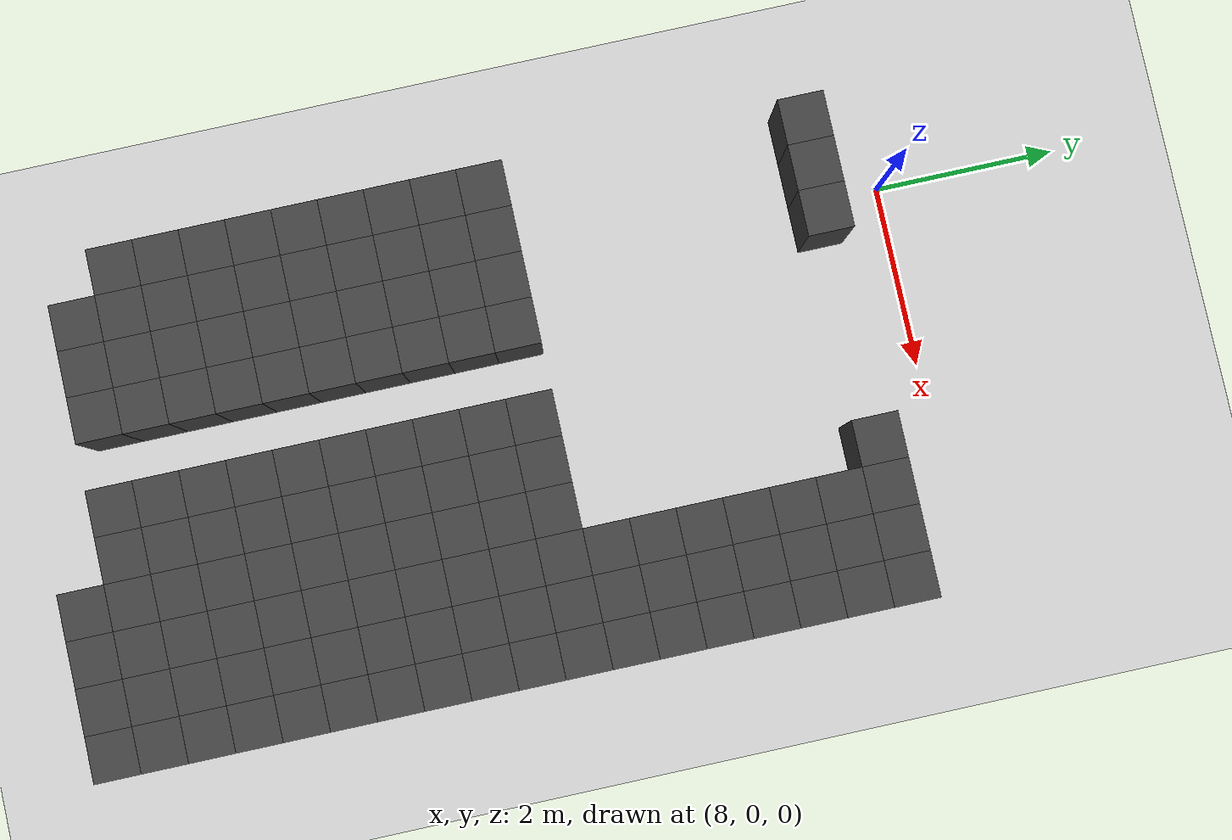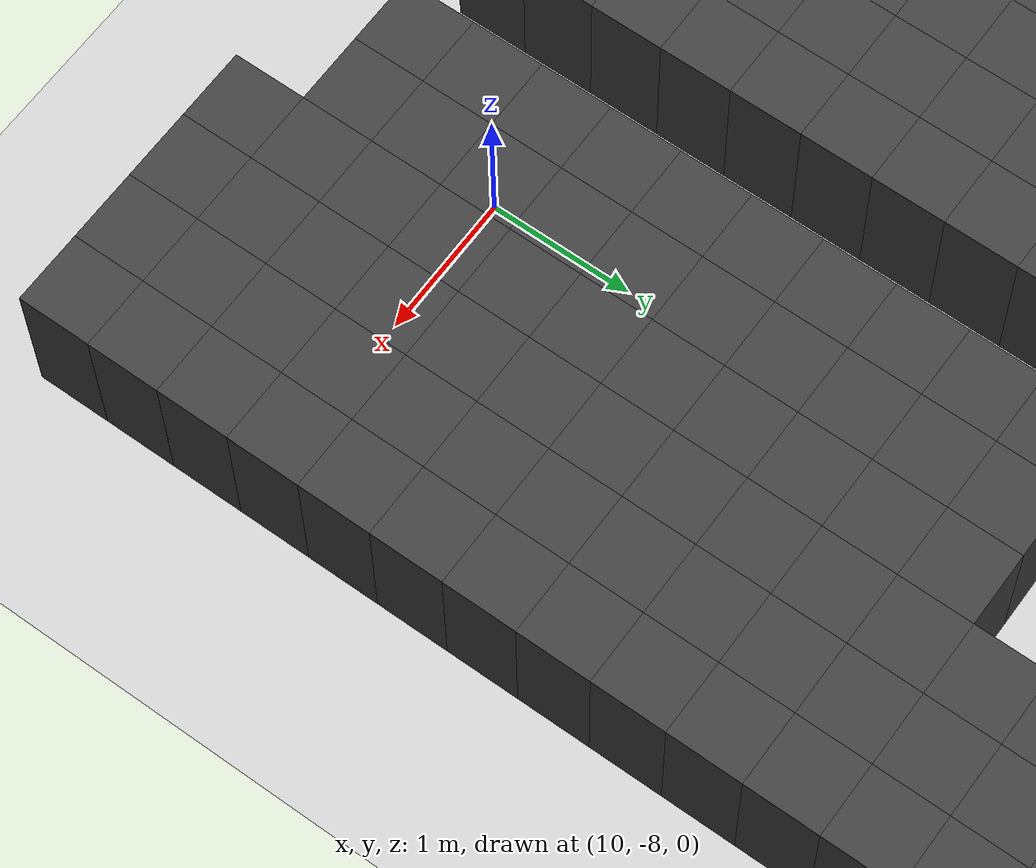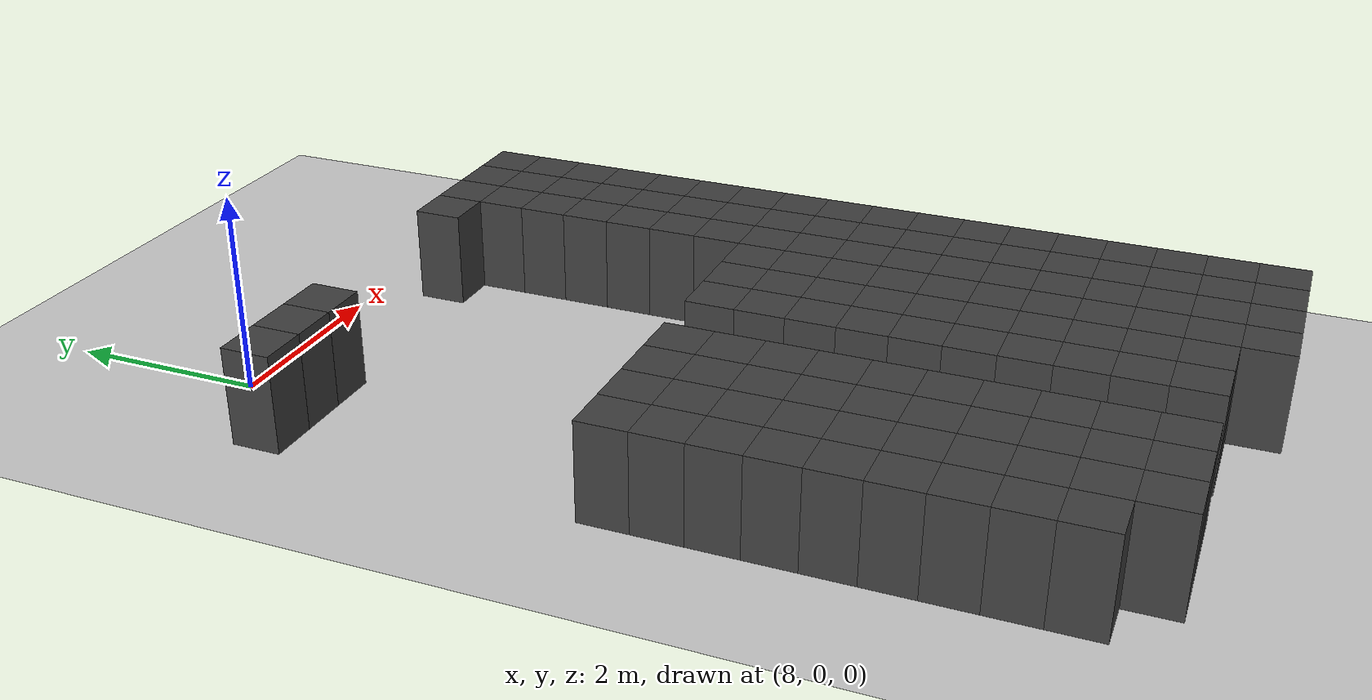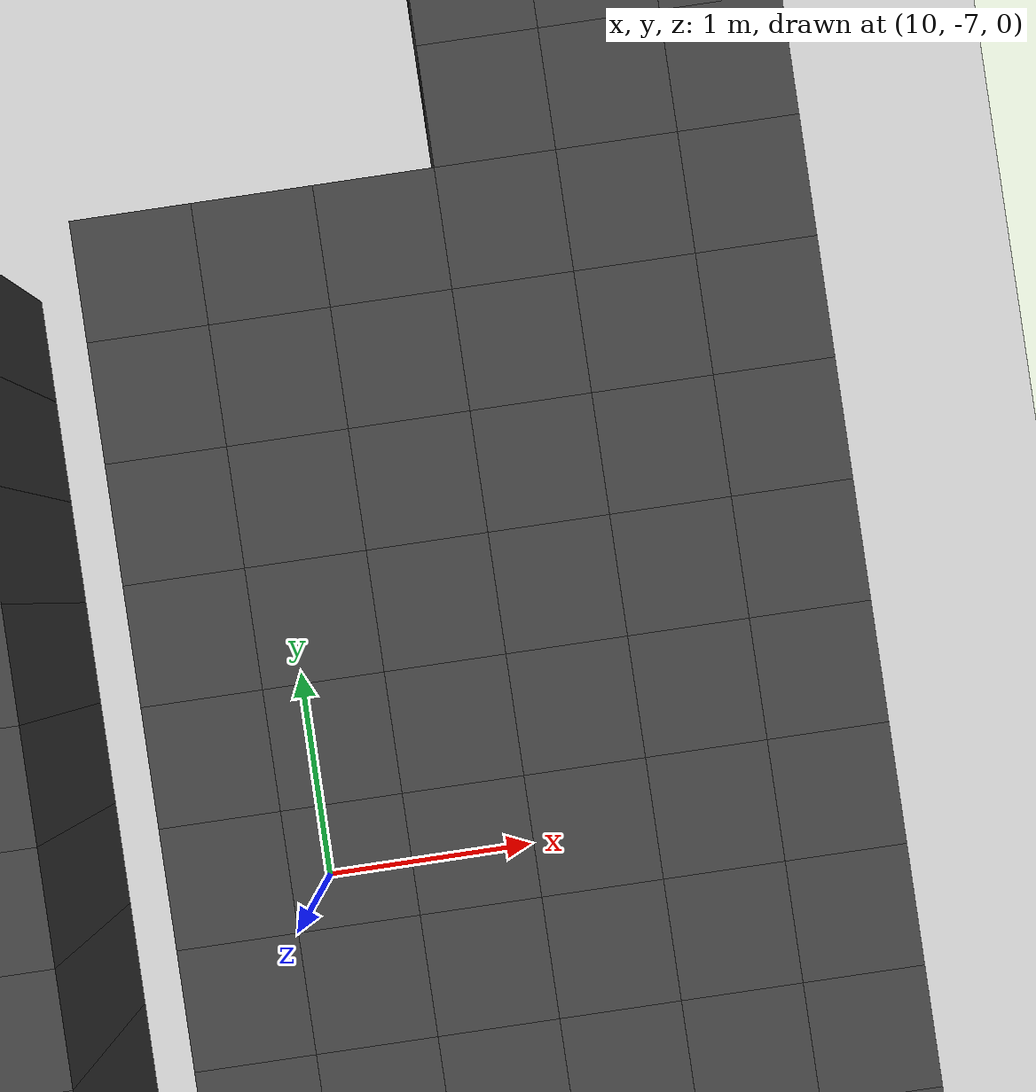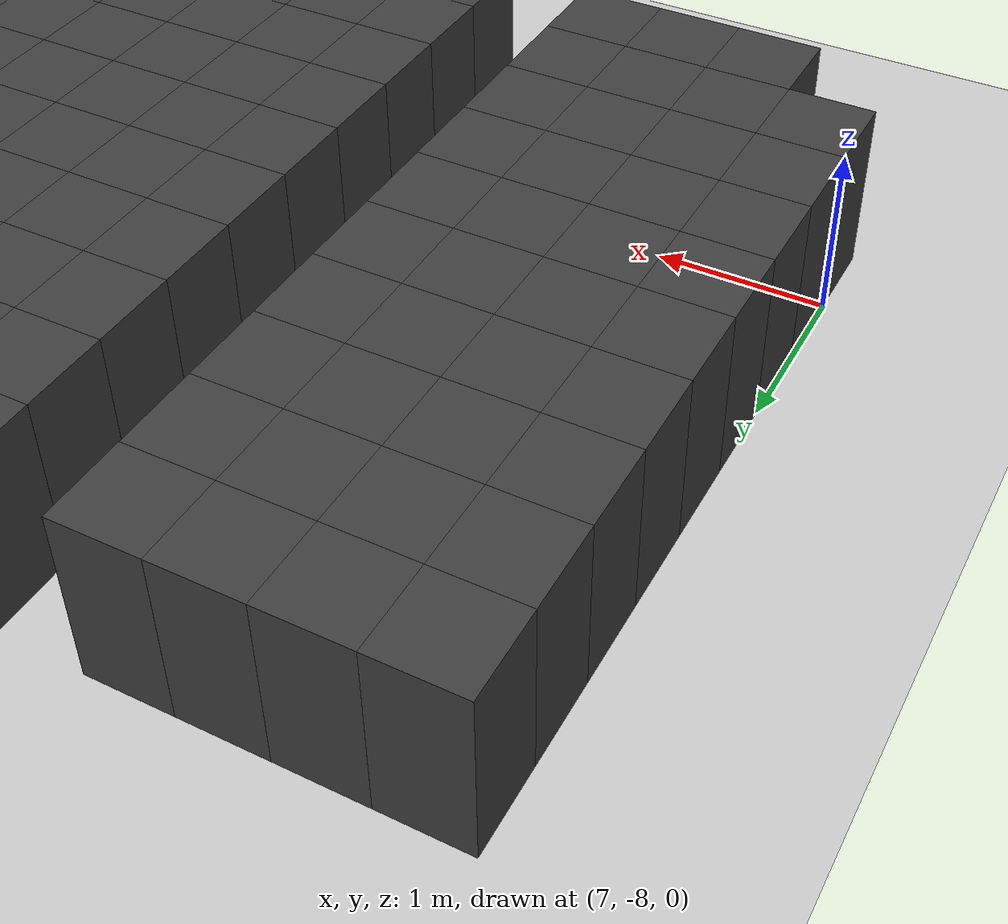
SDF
<sdf version="1.7">
 <world name="map_14494">
  <model name="ground_plane">
   <static>true</static>
   <link name="link">
    <collision name="collision">
     <geometry><plane><normal>0 0 1</normal><size>200 200</size></plane></geometry>
    </collision>
    <visual name="visual">
     <geometry><plane><normal>0 0 1</normal><size>200 200</size></plane></geometry>
     <material><ambient>0.8 0.8 0.8 1</ambient><diffuse>0.8 0.8 0.8 1</diffuse></material>
    </visual>
   </link>
  </model>
  <model name="maze_environment">
   <static>true</static>
   <link name="wall_978">
    <pose>7.250 -0.750 0.500 0 0 0</pose>
    <collision name="col"><geometry><box><size>0.5 0.5 1.0</size></box></geometry></collision>
    <visual name="vis">
     <geometry><box><size>0.5 0.5 1.0</size></box></geometry>
     <material><ambient>0.15 0.15 0.15 1</ambient><diffuse>0.25 0.25 0.25 1</diffuse></material>
    </visual>
   </link>
   <link name="wall_979">
    <pose>7.750 -0.750 0.500 0 0 0</pose>
    <collision name="col"><geometry><box><size>0.5 0.5 1.0</size></box></geometry></collision>
    <visual name="vis">
     <geometry><box><size>0.5 0.5 1.0</size></box></geometry>
     <material><ambient>0.15 0.15 0.15 1</ambient><diffuse>0.25 0.25 0.25 1</diffuse></material>
    </visual>
   </link>
   <link name="wall_980">
    <pose>8.250 -0.750 0.500 0 0 0</pose>
    <collision name="col"><geometry><box><size>0.5 0.5 1.0</size></box></geometry></collision>
    <visual name="vis">
     <geometry><box><size>0.5 0.5 1.0</size></box></geometry>
     <material><ambient>0.15 0.15 0.15 1</ambient><diffuse>0.25 0.25 0.25 1</diffuse></material>
    </visual>
   </link>
   <link name="wall_981">
    <pose>10.750 -0.750 0.500 0 0 0</pose>
    <collision name="col"><geometry><box><size>0.5 0.5 1.0</size></box></geometry></collision>
    <visual name="vis">
     <geometry><box><size>0.5 0.5 1.0</size></box></geometry>
     <material><ambient>0.15 0.15 0.15 1</ambient><diffuse>0.25 0.25 0.25 1</diffuse></material>
    </visual>
   </link>
   <link name="wall_982">
    <pose>11.250 -0.750 0.500 0 0 0</pose>
    <collision name="col"><geometry><box><size>0.5 0.5 1.0</size></box></geometry></collision>
    <visual name="vis">
     <geometry><box><size>0.5 0.5 1.0</size></box></geometry>
     <material><ambient>0.15 0.15 0.15 1</ambient><diffuse>0.25 0.25 0.25 1</diffuse></material>
    </visual>
   </link>
   <link name="wall_983">
    <pose>11.750 -0.750 0.500 0 0 0</pose>
    <collision name="col"><geometry><box><size>0.5 0.5 1.0</size></box></geometry></collision>
    <visual name="vis">
     <geometry><box><size>0.5 0.5 1.0</size></box></geometry>
     <material><ambient>0.15 0.15 0.15 1</ambient><diffuse>0.25 0.25 0.25 1</diffuse></material>
    </visual>
   </link>
   <link name="wall_984">
    <pose>12.250 -0.750 0.500 0 0 0</pose>
    <collision name="col"><geometry><box><size>0.5 0.5 1.0</size></box></geometry></collision>
    <visual name="vis">
     <geometry><box><size>0.5 0.5 1.0</size></box></geometry>
     <material><ambient>0.15 0.15 0.15 1</ambient><diffuse>0.25 0.25 0.25 1</diffuse></material>
    </visual>
   </link>
   <link name="wall_1014">
    <pose>11.250 -1.250 0.500 0 0 0</pose>
    <collision name="col"><geometry><box><size>0.5 0.5 1.0</size></box></geometry></collision>
    <visual name="vis">
     <geometry><box><size>0.5 0.5 1.0</size></box></geometry>
     <material><ambient>0.15 0.15 0.15 1</ambient><diffuse>0.25 0.25 0.25 1</diffuse></material>
    </visual>
   </link>
   <link name="wall_1015">
    <pose>11.750 -1.250 0.500 0 0 0</pose>
    <collision name="col"><geometry><box><size>0.5 0.5 1.0</size></box></geometry></collision>
    <visual name="vis">
     <geometry><box><size>0.5 0.5 1.0</size></box></geometry>
     <material><ambient>0.15 0.15 0.15 1</ambient><diffuse>0.25 0.25 0.25 1</diffuse></material>
    </visual>
   </link>
   <link name="wall_1016">
    <pose>12.250 -1.250 0.500 0 0 0</pose>
    <collision name="col"><geometry><box><size>0.5 0.5 1.0</size></box></geometry></collision>
    <visual name="vis">
     <geometry><box><size>0.5 0.5 1.0</size></box></geometry>
     <material><ambient>0.15 0.15 0.15 1</ambient><diffuse>0.25 0.25 0.25 1</diffuse></material>
    </visual>
   </link>
   <link name="wall_1046">
    <pose>11.250 -1.750 0.500 0 0 0</pose>
    <collision name="col"><geometry><box><size>0.5 0.5 1.0</size></box></geometry></collision>
    <visual name="vis">
     <geometry><box><size>0.5 0.5 1.0</size></box></geometry>
     <material><ambient>0.15 0.15 0.15 1</ambient><diffuse>0.25 0.25 0.25 1</diffuse></material>
    </visual>
   </link>
   <link name="wall_1047">
    <pose>11.750 -1.750 0.500 0 0 0</pose>
    <collision name="col"><geometry><box><size>0.5 0.5 1.0</size></box></geometry></collision>
    <visual name="vis">
     <geometry><box><size>0.5 0.5 1.0</size></box></geometry>
     <material><ambient>0.15 0.15 0.15 1</ambient><diffuse>0.25 0.25 0.25 1</diffuse></material>
    </visual>
   </link>
   <link name="wall_1048">
    <pose>12.250 -1.750 0.500 0 0 0</pose>
    <collision name="col"><geometry><box><size>0.5 0.5 1.0</size></box></geometry></collision>
    <visual name="vis">
     <geometry><box><size>0.5 0.5 1.0</size></box></geometry>
     <material><ambient>0.15 0.15 0.15 1</ambient><diffuse>0.25 0.25 0.25 1</diffuse></material>
    </visual>
   </link>
   <link name="wall_1078">
    <pose>11.250 -2.250 0.500 0 0 0</pose>
    <collision name="col"><geometry><box><size>0.5 0.5 1.0</size></box></geometry></collision>
    <visual name="vis">
     <geometry><box><size>0.5 0.5 1.0</size></box></geometry>
     <material><ambient>0.15 0.15 0.15 1</ambient><diffuse>0.25 0.25 0.25 1</diffuse></material>
    </visual>
   </link>
   <link name="wall_1079">
    <pose>11.750 -2.250 0.500 0 0 0</pose>
    <collision name="col"><geometry><box><size>0.5 0.5 1.0</size></box></geometry></collision>
    <visual name="vis">
     <geometry><box><size>0.5 0.5 1.0</size></box></geometry>
     <material><ambient>0.15 0.15 0.15 1</ambient><diffuse>0.25 0.25 0.25 1</diffuse></material>
    </visual>
   </link>
   <link name="wall_1080">
    <pose>12.250 -2.250 0.500 0 0 0</pose>
    <collision name="col"><geometry><box><size>0.5 0.5 1.0</size></box></geometry></collision>
    <visual name="vis">
     <geometry><box><size>0.5 0.5 1.0</size></box></geometry>
     <material><ambient>0.15 0.15 0.15 1</ambient><diffuse>0.25 0.25 0.25 1</diffuse></material>
    </visual>
   </link>
   <link name="wall_1104">
    <pose>11.250 -2.750 0.500 0 0 0</pose>
    <collision name="col"><geometry><box><size>0.5 0.5 1.0</size></box></geometry></collision>
    <visual name="vis">
     <geometry><box><size>0.5 0.5 1.0</size></box></geometry>
     <material><ambient>0.15 0.15 0.15 1</ambient><diffuse>0.25 0.25 0.25 1</diffuse></material>
    </visual>
   </link>
   <link name="wall_1105">
    <pose>11.750 -2.750 0.500 0 0 0</pose>
    <collision name="col"><geometry><box><size>0.5 0.5 1.0</size></box></geometry></collision>
    <visual name="vis">
     <geometry><box><size>0.5 0.5 1.0</size></box></geometry>
     <material><ambient>0.15 0.15 0.15 1</ambient><diffuse>0.25 0.25 0.25 1</diffuse></material>
    </visual>
   </link>
   <link name="wall_1106">
    <pose>12.250 -2.750 0.500 0 0 0</pose>
    <collision name="col"><geometry><box><size>0.5 0.5 1.0</size></box></geometry></collision>
    <visual name="vis">
     <geometry><box><size>0.5 0.5 1.0</size></box></geometry>
     <material><ambient>0.15 0.15 0.15 1</ambient><diffuse>0.25 0.25 0.25 1</diffuse></material>
    </visual>
   </link>
   <link name="wall_1131">
    <pose>11.250 -3.250 0.500 0 0 0</pose>
    <collision name="col"><geometry><box><size>0.5 0.5 1.0</size></box></geometry></collision>
    <visual name="vis">
     <geometry><box><size>0.5 0.5 1.0</size></box></geometry>
     <material><ambient>0.15 0.15 0.15 1</ambient><diffuse>0.25 0.25 0.25 1</diffuse></material>
    </visual>
   </link>
   <link name="wall_1132">
    <pose>11.750 -3.250 0.500 0 0 0</pose>
    <collision name="col"><geometry><box><size>0.5 0.5 1.0</size></box></geometry></collision>
    <visual name="vis">
     <geometry><box><size>0.5 0.5 1.0</size></box></geometry>
     <material><ambient>0.15 0.15 0.15 1</ambient><diffuse>0.25 0.25 0.25 1</diffuse></material>
    </visual>
   </link>
   <link name="wall_1133">
    <pose>12.250 -3.250 0.500 0 0 0</pose>
    <collision name="col"><geometry><box><size>0.5 0.5 1.0</size></box></geometry></collision>
    <visual name="vis">
     <geometry><box><size>0.5 0.5 1.0</size></box></geometry>
     <material><ambient>0.15 0.15 0.15 1</ambient><diffuse>0.25 0.25 0.25 1</diffuse></material>
    </visual>
   </link>
   <link name="wall_1158">
    <pose>11.250 -3.750 0.500 0 0 0</pose>
    <collision name="col"><geometry><box><size>0.5 0.5 1.0</size></box></geometry></collision>
    <visual name="vis">
     <geometry><box><size>0.5 0.5 1.0</size></box></geometry>
     <material><ambient>0.15 0.15 0.15 1</ambient><diffuse>0.25 0.25 0.25 1</diffuse></material>
    </visual>
   </link>
   <link name="wall_1159">
    <pose>11.750 -3.750 0.500 0 0 0</pose>
    <collision name="col"><geometry><box><size>0.5 0.5 1.0</size></box></geometry></collision>
    <visual name="vis">
     <geometry><box><size>0.5 0.5 1.0</size></box></geometry>
     <material><ambient>0.15 0.15 0.15 1</ambient><diffuse>0.25 0.25 0.25 1</diffuse></material>
    </visual>
   </link>
   <link name="wall_1160">
    <pose>12.250 -3.750 0.500 0 0 0</pose>
    <collision name="col"><geometry><box><size>0.5 0.5 1.0</size></box></geometry></collision>
    <visual name="vis">
     <geometry><box><size>0.5 0.5 1.0</size></box></geometry>
     <material><ambient>0.15 0.15 0.15 1</ambient><diffuse>0.25 0.25 0.25 1</diffuse></material>
    </visual>
   </link>
   <link name="wall_1178">
    <pose>7.250 -4.250 0.500 0 0 0</pose>
    <collision name="col"><geometry><box><size>0.5 0.5 1.0</size></box></geometry></collision>
    <visual name="vis">
     <geometry><box><size>0.5 0.5 1.0</size></box></geometry>
     <material><ambient>0.15 0.15 0.15 1</ambient><diffuse>0.25 0.25 0.25 1</diffuse></material>
    </visual>
   </link>
   <link name="wall_1179">
    <pose>7.750 -4.250 0.500 0 0 0</pose>
    <collision name="col"><geometry><box><size>0.5 0.5 1.0</size></box></geometry></collision>
    <visual name="vis">
     <geometry><box><size>0.5 0.5 1.0</size></box></geometry>
     <material><ambient>0.15 0.15 0.15 1</ambient><diffuse>0.25 0.25 0.25 1</diffuse></material>
    </visual>
   </link>
   <link name="wall_1180">
    <pose>8.250 -4.250 0.500 0 0 0</pose>
    <collision name="col"><geometry><box><size>0.5 0.5 1.0</size></box></geometry></collision>
    <visual name="vis">
     <geometry><box><size>0.5 0.5 1.0</size></box></geometry>
     <material><ambient>0.15 0.15 0.15 1</ambient><diffuse>0.25 0.25 0.25 1</diffuse></material>
    </visual>
   </link>
   <link name="wall_1181">
    <pose>8.750 -4.250 0.500 0 0 0</pose>
    <collision name="col"><geometry><box><size>0.5 0.5 1.0</size></box></geometry></collision>
    <visual name="vis">
     <geometry><box><size>0.5 0.5 1.0</size></box></geometry>
     <material><ambient>0.15 0.15 0.15 1</ambient><diffuse>0.25 0.25 0.25 1</diffuse></material>
    </visual>
   </link>
   <link name="wall_1182">
    <pose>9.750 -4.250 0.500 0 0 0</pose>
    <collision name="col"><geometry><box><size>0.5 0.5 1.0</size></box></geometry></collision>
    <visual name="vis">
     <geometry><box><size>0.5 0.5 1.0</size></box></geometry>
     <material><ambient>0.15 0.15 0.15 1</ambient><diffuse>0.25 0.25 0.25 1</diffuse></material>
    </visual>
   </link>
   <link name="wall_1183">
    <pose>10.250 -4.250 0.500 0 0 0</pose>
    <collision name="col"><geometry><box><size>0.5 0.5 1.0</size></box></geometry></collision>
    <visual name="vis">
     <geometry><box><size>0.5 0.5 1.0</size></box></geometry>
     <material><ambient>0.15 0.15 0.15 1</ambient><diffuse>0.25 0.25 0.25 1</diffuse></material>
    </visual>
   </link>
   <link name="wall_1184">
    <pose>10.750 -4.250 0.500 0 0 0</pose>
    <collision name="col"><geometry><box><size>0.5 0.5 1.0</size></box></geometry></collision>
    <visual name="vis">
     <geometry><box><size>0.5 0.5 1.0</size></box></geometry>
     <material><ambient>0.15 0.15 0.15 1</ambient><diffuse>0.25 0.25 0.25 1</diffuse></material>
    </visual>
   </link>
   <link name="wall_1185">
    <pose>11.250 -4.250 0.500 0 0 0</pose>
    <collision name="col"><geometry><box><size>0.5 0.5 1.0</size></box></geometry></collision>
    <visual name="vis">
     <geometry><box><size>0.5 0.5 1.0</size></box></geometry>
     <material><ambient>0.15 0.15 0.15 1</ambient><diffuse>0.25 0.25 0.25 1</diffuse></material>
    </visual>
   </link>
   <link name="wall_1186">
    <pose>11.750 -4.250 0.500 0 0 0</pose>
    <collision name="col"><geometry><box><size>0.5 0.5 1.0</size></box></geometry></collision>
    <visual name="vis">
     <geometry><box><size>0.5 0.5 1.0</size></box></geometry>
     <material><ambient>0.15 0.15 0.15 1</ambient><diffuse>0.25 0.25 0.25 1</diffuse></material>
    </visual>
   </link>
   <link name="wall_1187">
    <pose>12.250 -4.250 0.500 0 0 0</pose>
    <collision name="col"><geometry><box><size>0.5 0.5 1.0</size></box></geometry></collision>
    <visual name="vis">
     <geometry><box><size>0.5 0.5 1.0</size></box></geometry>
     <material><ambient>0.15 0.15 0.15 1</ambient><diffuse>0.25 0.25 0.25 1</diffuse></material>
    </visual>
   </link>
   <link name="wall_1215">
    <pose>7.250 -4.750 0.500 0 0 0</pose>
    <collision name="col"><geometry><box><size>0.5 0.5 1.0</size></box></geometry></collision>
    <visual name="vis">
     <geometry><box><size>0.5 0.5 1.0</size></box></geometry>
     <material><ambient>0.15 0.15 0.15 1</ambient><diffuse>0.25 0.25 0.25 1</diffuse></material>
    </visual>
   </link>
   <link name="wall_1216">
    <pose>7.750 -4.750 0.500 0 0 0</pose>
    <collision name="col"><geometry><box><size>0.5 0.5 1.0</size></box></geometry></collision>
    <visual name="vis">
     <geometry><box><size>0.5 0.5 1.0</size></box></geometry>
     <material><ambient>0.15 0.15 0.15 1</ambient><diffuse>0.25 0.25 0.25 1</diffuse></material>
    </visual>
   </link>
   <link name="wall_1217">
    <pose>8.250 -4.750 0.500 0 0 0</pose>
    <collision name="col"><geometry><box><size>0.5 0.5 1.0</size></box></geometry></collision>
    <visual name="vis">
     <geometry><box><size>0.5 0.5 1.0</size></box></geometry>
     <material><ambient>0.15 0.15 0.15 1</ambient><diffuse>0.25 0.25 0.25 1</diffuse></material>
    </visual>
   </link>
   <link name="wall_1218">
    <pose>8.750 -4.750 0.500 0 0 0</pose>
    <collision name="col"><geometry><box><size>0.5 0.5 1.0</size></box></geometry></collision>
    <visual name="vis">
     <geometry><box><size>0.5 0.5 1.0</size></box></geometry>
     <material><ambient>0.15 0.15 0.15 1</ambient><diffuse>0.25 0.25 0.25 1</diffuse></material>
    </visual>
   </link>
   <link name="wall_1219">
    <pose>9.750 -4.750 0.500 0 0 0</pose>
    <collision name="col"><geometry><box><size>0.5 0.5 1.0</size></box></geometry></collision>
    <visual name="vis">
     <geometry><box><size>0.5 0.5 1.0</size></box></geometry>
     <material><ambient>0.15 0.15 0.15 1</ambient><diffuse>0.25 0.25 0.25 1</diffuse></material>
    </visual>
   </link>
   <link name="wall_1220">
    <pose>10.250 -4.750 0.500 0 0 0</pose>
    <collision name="col"><geometry><box><size>0.5 0.5 1.0</size></box></geometry></collision>
    <visual name="vis">
     <geometry><box><size>0.5 0.5 1.0</size></box></geometry>
     <material><ambient>0.15 0.15 0.15 1</ambient><diffuse>0.25 0.25 0.25 1</diffuse></material>
    </visual>
   </link>
   <link name="wall_1221">
    <pose>10.750 -4.750 0.500 0 0 0</pose>
    <collision name="col"><geometry><box><size>0.5 0.5 1.0</size></box></geometry></collision>
    <visual name="vis">
     <geometry><box><size>0.5 0.5 1.0</size></box></geometry>
     <material><ambient>0.15 0.15 0.15 1</ambient><diffuse>0.25 0.25 0.25 1</diffuse></material>
    </visual>
   </link>
   <link name="wall_1222">
    <pose>11.250 -4.750 0.500 0 0 0</pose>
    <collision name="col"><geometry><box><size>0.5 0.5 1.0</size></box></geometry></collision>
    <visual name="vis">
     <geometry><box><size>0.5 0.5 1.0</size></box></geometry>
     <material><ambient>0.15 0.15 0.15 1</ambient><diffuse>0.25 0.25 0.25 1</diffuse></material>
    </visual>
   </link>
   <link name="wall_1223">
    <pose>11.750 -4.750 0.500 0 0 0</pose>
    <collision name="col"><geometry><box><size>0.5 0.5 1.0</size></box></geometry></collision>
    <visual name="vis">
     <geometry><box><size>0.5 0.5 1.0</size></box></geometry>
     <material><ambient>0.15 0.15 0.15 1</ambient><diffuse>0.25 0.25 0.25 1</diffuse></material>
    </visual>
   </link>
   <link name="wall_1224">
    <pose>12.250 -4.750 0.500 0 0 0</pose>
    <collision name="col"><geometry><box><size>0.5 0.5 1.0</size></box></geometry></collision>
    <visual name="vis">
     <geometry><box><size>0.5 0.5 1.0</size></box></geometry>
     <material><ambient>0.15 0.15 0.15 1</ambient><diffuse>0.25 0.25 0.25 1</diffuse></material>
    </visual>
   </link>
   <link name="wall_1252">
    <pose>7.250 -5.250 0.500 0 0 0</pose>
    <collision name="col"><geometry><box><size>0.5 0.5 1.0</size></box></geometry></collision>
    <visual name="vis">
     <geometry><box><size>0.5 0.5 1.0</size></box></geometry>
     <material><ambient>0.15 0.15 0.15 1</ambient><diffuse>0.25 0.25 0.25 1</diffuse></material>
    </visual>
   </link>
   <link name="wall_1253">
    <pose>7.750 -5.250 0.500 0 0 0</pose>
    <collision name="col"><geometry><box><size>0.5 0.5 1.0</size></box></geometry></collision>
    <visual name="vis">
     <geometry><box><size>0.5 0.5 1.0</size></box></geometry>
     <material><ambient>0.15 0.15 0.15 1</ambient><diffuse>0.25 0.25 0.25 1</diffuse></material>
    </visual>
   </link>
   <link name="wall_1254">
    <pose>8.250 -5.250 0.500 0 0 0</pose>
    <collision name="col"><geometry><box><size>0.5 0.5 1.0</size></box></geometry></collision>
    <visual name="vis">
     <geometry><box><size>0.5 0.5 1.0</size></box></geometry>
     <material><ambient>0.15 0.15 0.15 1</ambient><diffuse>0.25 0.25 0.25 1</diffuse></material>
    </visual>
   </link>
   <link name="wall_1255">
    <pose>8.750 -5.250 0.500 0 0 0</pose>
    <collision name="col"><geometry><box><size>0.5 0.5 1.0</size></box></geometry></collision>
    <visual name="vis">
     <geometry><box><size>0.5 0.5 1.0</size></box></geometry>
     <material><ambient>0.15 0.15 0.15 1</ambient><diffuse>0.25 0.25 0.25 1</diffuse></material>
    </visual>
   </link>
   <link name="wall_1256">
    <pose>9.750 -5.250 0.500 0 0 0</pose>
    <collision name="col"><geometry><box><size>0.5 0.5 1.0</size></box></geometry></collision>
    <visual name="vis">
     <geometry><box><size>0.5 0.5 1.0</size></box></geometry>
     <material><ambient>0.15 0.15 0.15 1</ambient><diffuse>0.25 0.25 0.25 1</diffuse></material>
    </visual>
   </link>
   <link name="wall_1257">
    <pose>10.250 -5.250 0.500 0 0 0</pose>
    <collision name="col"><geometry><box><size>0.5 0.5 1.0</size></box></geometry></collision>
    <visual name="vis">
     <geometry><box><size>0.5 0.5 1.0</size></box></geometry>
     <material><ambient>0.15 0.15 0.15 1</ambient><diffuse>0.25 0.25 0.25 1</diffuse></material>
    </visual>
   </link>
   <link name="wall_1258">
    <pose>10.750 -5.250 0.500 0 0 0</pose>
    <collision name="col"><geometry><box><size>0.5 0.5 1.0</size></box></geometry></collision>
    <visual name="vis">
     <geometry><box><size>0.5 0.5 1.0</size></box></geometry>
     <material><ambient>0.15 0.15 0.15 1</ambient><diffuse>0.25 0.25 0.25 1</diffuse></material>
    </visual>
   </link>
   <link name="wall_1259">
    <pose>11.250 -5.250 0.500 0 0 0</pose>
    <collision name="col"><geometry><box><size>0.5 0.5 1.0</size></box></geometry></collision>
    <visual name="vis">
     <geometry><box><size>0.5 0.5 1.0</size></box></geometry>
     <material><ambient>0.15 0.15 0.15 1</ambient><diffuse>0.25 0.25 0.25 1</diffuse></material>
    </visual>
   </link>
   <link name="wall_1260">
    <pose>11.750 -5.250 0.500 0 0 0</pose>
    <collision name="col"><geometry><box><size>0.5 0.5 1.0</size></box></geometry></collision>
    <visual name="vis">
     <geometry><box><size>0.5 0.5 1.0</size></box></geometry>
     <material><ambient>0.15 0.15 0.15 1</ambient><diffuse>0.25 0.25 0.25 1</diffuse></material>
    </visual>
   </link>
   <link name="wall_1261">
    <pose>12.250 -5.250 0.500 0 0 0</pose>
    <collision name="col"><geometry><box><size>0.5 0.5 1.0</size></box></geometry></collision>
    <visual name="vis">
     <geometry><box><size>0.5 0.5 1.0</size></box></geometry>
     <material><ambient>0.15 0.15 0.15 1</ambient><diffuse>0.25 0.25 0.25 1</diffuse></material>
    </visual>
   </link>
   <link name="wall_1299">
    <pose>7.250 -5.750 0.500 0 0 0</pose>
    <collision name="col"><geometry><box><size>0.5 0.5 1.0</size></box></geometry></collision>
    <visual name="vis">
     <geometry><box><size>0.5 0.5 1.0</size></box></geometry>
     <material><ambient>0.15 0.15 0.15 1</ambient><diffuse>0.25 0.25 0.25 1</diffuse></material>
    </visual>
   </link>
   <link name="wall_1300">
    <pose>7.750 -5.750 0.500 0 0 0</pose>
    <collision name="col"><geometry><box><size>0.5 0.5 1.0</size></box></geometry></collision>
    <visual name="vis">
     <geometry><box><size>0.5 0.5 1.0</size></box></geometry>
     <material><ambient>0.15 0.15 0.15 1</ambient><diffuse>0.25 0.25 0.25 1</diffuse></material>
    </visual>
   </link>
   <link name="wall_1301">
    <pose>8.250 -5.750 0.500 0 0 0</pose>
    <collision name="col"><geometry><box><size>0.5 0.5 1.0</size></box></geometry></collision>
    <visual name="vis">
     <geometry><box><size>0.5 0.5 1.0</size></box></geometry>
     <material><ambient>0.15 0.15 0.15 1</ambient><diffuse>0.25 0.25 0.25 1</diffuse></material>
    </visual>
   </link>
   <link name="wall_1302">
    <pose>8.750 -5.750 0.500 0 0 0</pose>
    <collision name="col"><geometry><box><size>0.5 0.5 1.0</size></box></geometry></collision>
    <visual name="vis">
     <geometry><box><size>0.5 0.5 1.0</size></box></geometry>
     <material><ambient>0.15 0.15 0.15 1</ambient><diffuse>0.25 0.25 0.25 1</diffuse></material>
    </visual>
   </link>
   <link name="wall_1303">
    <pose>9.750 -5.750 0.500 0 0 0</pose>
    <collision name="col"><geometry><box><size>0.5 0.5 1.0</size></box></geometry></collision>
    <visual name="vis">
     <geometry><box><size>0.5 0.5 1.0</size></box></geometry>
     <material><ambient>0.15 0.15 0.15 1</ambient><diffuse>0.25 0.25 0.25 1</diffuse></material>
    </visual>
   </link>
   <link name="wall_1304">
    <pose>10.250 -5.750 0.500 0 0 0</pose>
    <collision name="col"><geometry><box><size>0.5 0.5 1.0</size></box></geometry></collision>
    <visual name="vis">
     <geometry><box><size>0.5 0.5 1.0</size></box></geometry>
     <material><ambient>0.15 0.15 0.15 1</ambient><diffuse>0.25 0.25 0.25 1</diffuse></material>
    </visual>
   </link>
   <link name="wall_1305">
    <pose>10.750 -5.750 0.500 0 0 0</pose>
    <collision name="col"><geometry><box><size>0.5 0.5 1.0</size></box></geometry></collision>
    <visual name="vis">
     <geometry><box><size>0.5 0.5 1.0</size></box></geometry>
     <material><ambient>0.15 0.15 0.15 1</ambient><diffuse>0.25 0.25 0.25 1</diffuse></material>
    </visual>
   </link>
   <link name="wall_1306">
    <pose>11.250 -5.750 0.500 0 0 0</pose>
    <collision name="col"><geometry><box><size>0.5 0.5 1.0</size></box></geometry></collision>
    <visual name="vis">
     <geometry><box><size>0.5 0.5 1.0</size></box></geometry>
     <material><ambient>0.15 0.15 0.15 1</ambient><diffuse>0.25 0.25 0.25 1</diffuse></material>
    </visual>
   </link>
   <link name="wall_1307">
    <pose>11.750 -5.750 0.500 0 0 0</pose>
    <collision name="col"><geometry><box><size>0.5 0.5 1.0</size></box></geometry></collision>
    <visual name="vis">
     <geometry><box><size>0.5 0.5 1.0</size></box></geometry>
     <material><ambient>0.15 0.15 0.15 1</ambient><diffuse>0.25 0.25 0.25 1</diffuse></material>
    </visual>
   </link>
   <link name="wall_1308">
    <pose>12.250 -5.750 0.500 0 0 0</pose>
    <collision name="col"><geometry><box><size>0.5 0.5 1.0</size></box></geometry></collision>
    <visual name="vis">
     <geometry><box><size>0.5 0.5 1.0</size></box></geometry>
     <material><ambient>0.15 0.15 0.15 1</ambient><diffuse>0.25 0.25 0.25 1</diffuse></material>
    </visual>
   </link>
   <link name="wall_1346">
    <pose>7.250 -6.250 0.500 0 0 0</pose>
    <collision name="col"><geometry><box><size>0.5 0.5 1.0</size></box></geometry></collision>
    <visual name="vis">
     <geometry><box><size>0.5 0.5 1.0</size></box></geometry>
     <material><ambient>0.15 0.15 0.15 1</ambient><diffuse>0.25 0.25 0.25 1</diffuse></material>
    </visual>
   </link>
   <link name="wall_1347">
    <pose>7.750 -6.250 0.500 0 0 0</pose>
    <collision name="col"><geometry><box><size>0.5 0.5 1.0</size></box></geometry></collision>
    <visual name="vis">
     <geometry><box><size>0.5 0.5 1.0</size></box></geometry>
     <material><ambient>0.15 0.15 0.15 1</ambient><diffuse>0.25 0.25 0.25 1</diffuse></material>
    </visual>
   </link>
   <link name="wall_1348">
    <pose>8.250 -6.250 0.500 0 0 0</pose>
    <collision name="col"><geometry><box><size>0.5 0.5 1.0</size></box></geometry></collision>
    <visual name="vis">
     <geometry><box><size>0.5 0.5 1.0</size></box></geometry>
     <material><ambient>0.15 0.15 0.15 1</ambient><diffuse>0.25 0.25 0.25 1</diffuse></material>
    </visual>
   </link>
   <link name="wall_1349">
    <pose>8.750 -6.250 0.500 0 0 0</pose>
    <collision name="col"><geometry><box><size>0.5 0.5 1.0</size></box></geometry></collision>
    <visual name="vis">
     <geometry><box><size>0.5 0.5 1.0</size></box></geometry>
     <material><ambient>0.15 0.15 0.15 1</ambient><diffuse>0.25 0.25 0.25 1</diffuse></material>
    </visual>
   </link>
   <link name="wall_1350">
    <pose>9.750 -6.250 0.500 0 0 0</pose>
    <collision name="col"><geometry><box><size>0.5 0.5 1.0</size></box></geometry></collision>
    <visual name="vis">
     <geometry><box><size>0.5 0.5 1.0</size></box></geometry>
     <material><ambient>0.15 0.15 0.15 1</ambient><diffuse>0.25 0.25 0.25 1</diffuse></material>
    </visual>
   </link>
   <link name="wall_1351">
    <pose>10.250 -6.250 0.500 0 0 0</pose>
    <collision name="col"><geometry><box><size>0.5 0.5 1.0</size></box></geometry></collision>
    <visual name="vis">
     <geometry><box><size>0.5 0.5 1.0</size></box></geometry>
     <material><ambient>0.15 0.15 0.15 1</ambient><diffuse>0.25 0.25 0.25 1</diffuse></material>
    </visual>
   </link>
   <link name="wall_1352">
    <pose>10.750 -6.250 0.500 0 0 0</pose>
    <collision name="col"><geometry><box><size>0.5 0.5 1.0</size></box></geometry></collision>
    <visual name="vis">
     <geometry><box><size>0.5 0.5 1.0</size></box></geometry>
     <material><ambient>0.15 0.15 0.15 1</ambient><diffuse>0.25 0.25 0.25 1</diffuse></material>
    </visual>
   </link>
   <link name="wall_1353">
    <pose>11.250 -6.250 0.500 0 0 0</pose>
    <collision name="col"><geometry><box><size>0.5 0.5 1.0</size></box></geometry></collision>
    <visual name="vis">
     <geometry><box><size>0.5 0.5 1.0</size></box></geometry>
     <material><ambient>0.15 0.15 0.15 1</ambient><diffuse>0.25 0.25 0.25 1</diffuse></material>
    </visual>
   </link>
   <link name="wall_1354">
    <pose>11.750 -6.250 0.500 0 0 0</pose>
    <collision name="col"><geometry><box><size>0.5 0.5 1.0</size></box></geometry></collision>
    <visual name="vis">
     <geometry><box><size>0.5 0.5 1.0</size></box></geometry>
     <material><ambient>0.15 0.15 0.15 1</ambient><diffuse>0.25 0.25 0.25 1</diffuse></material>
    </visual>
   </link>
   <link name="wall_1355">
    <pose>12.250 -6.250 0.500 0 0 0</pose>
    <collision name="col"><geometry><box><size>0.5 0.5 1.0</size></box></geometry></collision>
    <visual name="vis">
     <geometry><box><size>0.5 0.5 1.0</size></box></geometry>
     <material><ambient>0.15 0.15 0.15 1</ambient><diffuse>0.25 0.25 0.25 1</diffuse></material>
    </visual>
   </link>
   <link name="wall_1393">
    <pose>7.250 -6.750 0.500 0 0 0</pose>
    <collision name="col"><geometry><box><size>0.5 0.5 1.0</size></box></geometry></collision>
    <visual name="vis">
     <geometry><box><size>0.5 0.5 1.0</size></box></geometry>
     <material><ambient>0.15 0.15 0.15 1</ambient><diffuse>0.25 0.25 0.25 1</diffuse></material>
    </visual>
   </link>
   <link name="wall_1394">
    <pose>7.750 -6.750 0.500 0 0 0</pose>
    <collision name="col"><geometry><box><size>0.5 0.5 1.0</size></box></geometry></collision>
    <visual name="vis">
     <geometry><box><size>0.5 0.5 1.0</size></box></geometry>
     <material><ambient>0.15 0.15 0.15 1</ambient><diffuse>0.25 0.25 0.25 1</diffuse></material>
    </visual>
   </link>
   <link name="wall_1395">
    <pose>8.250 -6.750 0.500 0 0 0</pose>
    <collision name="col"><geometry><box><size>0.5 0.5 1.0</size></box></geometry></collision>
    <visual name="vis">
     <geometry><box><size>0.5 0.5 1.0</size></box></geometry>
     <material><ambient>0.15 0.15 0.15 1</ambient><diffuse>0.25 0.25 0.25 1</diffuse></material>
    </visual>
   </link>
   <link name="wall_1396">
    <pose>8.750 -6.750 0.500 0 0 0</pose>
    <collision name="col"><geometry><box><size>0.5 0.5 1.0</size></box></geometry></collision>
    <visual name="vis">
     <geometry><box><size>0.5 0.5 1.0</size></box></geometry>
     <material><ambient>0.15 0.15 0.15 1</ambient><diffuse>0.25 0.25 0.25 1</diffuse></material>
    </visual>
   </link>
   <link name="wall_1397">
    <pose>9.750 -6.750 0.500 0 0 0</pose>
    <collision name="col"><geometry><box><size>0.5 0.5 1.0</size></box></geometry></collision>
    <visual name="vis">
     <geometry><box><size>0.5 0.5 1.0</size></box></geometry>
     <material><ambient>0.15 0.15 0.15 1</ambient><diffuse>0.25 0.25 0.25 1</diffuse></material>
    </visual>
   </link>
   <link name="wall_1398">
    <pose>10.250 -6.750 0.500 0 0 0</pose>
    <collision name="col"><geometry><box><size>0.5 0.5 1.0</size></box></geometry></collision>
    <visual name="vis">
     <geometry><box><size>0.5 0.5 1.0</size></box></geometry>
     <material><ambient>0.15 0.15 0.15 1</ambient><diffuse>0.25 0.25 0.25 1</diffuse></material>
    </visual>
   </link>
   <link name="wall_1399">
    <pose>10.750 -6.750 0.500 0 0 0</pose>
    <collision name="col"><geometry><box><size>0.5 0.5 1.0</size></box></geometry></collision>
    <visual name="vis">
     <geometry><box><size>0.5 0.5 1.0</size></box></geometry>
     <material><ambient>0.15 0.15 0.15 1</ambient><diffuse>0.25 0.25 0.25 1</diffuse></material>
    </visual>
   </link>
   <link name="wall_1400">
    <pose>11.250 -6.750 0.500 0 0 0</pose>
    <collision name="col"><geometry><box><size>0.5 0.5 1.0</size></box></geometry></collision>
    <visual name="vis">
     <geometry><box><size>0.5 0.5 1.0</size></box></geometry>
     <material><ambient>0.15 0.15 0.15 1</ambient><diffuse>0.25 0.25 0.25 1</diffuse></material>
    </visual>
   </link>
   <link name="wall_1401">
    <pose>11.750 -6.750 0.500 0 0 0</pose>
    <collision name="col"><geometry><box><size>0.5 0.5 1.0</size></box></geometry></collision>
    <visual name="vis">
     <geometry><box><size>0.5 0.5 1.0</size></box></geometry>
     <material><ambient>0.15 0.15 0.15 1</ambient><diffuse>0.25 0.25 0.25 1</diffuse></material>
    </visual>
   </link>
   <link name="wall_1402">
    <pose>12.250 -6.750 0.500 0 0 0</pose>
    <collision name="col"><geometry><box><size>0.5 0.5 1.0</size></box></geometry></collision>
    <visual name="vis">
     <geometry><box><size>0.5 0.5 1.0</size></box></geometry>
     <material><ambient>0.15 0.15 0.15 1</ambient><diffuse>0.25 0.25 0.25 1</diffuse></material>
    </visual>
   </link>
   <link name="wall_1434">
    <pose>7.250 -7.250 0.500 0 0 0</pose>
    <collision name="col"><geometry><box><size>0.5 0.5 1.0</size></box></geometry></collision>
    <visual name="vis">
     <geometry><box><size>0.5 0.5 1.0</size></box></geometry>
     <material><ambient>0.15 0.15 0.15 1</ambient><diffuse>0.25 0.25 0.25 1</diffuse></material>
    </visual>
   </link>
   <link name="wall_1435">
    <pose>7.750 -7.250 0.500 0 0 0</pose>
    <collision name="col"><geometry><box><size>0.5 0.5 1.0</size></box></geometry></collision>
    <visual name="vis">
     <geometry><box><size>0.5 0.5 1.0</size></box></geometry>
     <material><ambient>0.15 0.15 0.15 1</ambient><diffuse>0.25 0.25 0.25 1</diffuse></material>
    </visual>
   </link>
   <link name="wall_1436">
    <pose>8.250 -7.250 0.500 0 0 0</pose>
    <collision name="col"><geometry><box><size>0.5 0.5 1.0</size></box></geometry></collision>
    <visual name="vis">
     <geometry><box><size>0.5 0.5 1.0</size></box></geometry>
     <material><ambient>0.15 0.15 0.15 1</ambient><diffuse>0.25 0.25 0.25 1</diffuse></material>
    </visual>
   </link>
   <link name="wall_1437">
    <pose>8.750 -7.250 0.500 0 0 0</pose>
    <collision name="col"><geometry><box><size>0.5 0.5 1.0</size></box></geometry></collision>
    <visual name="vis">
     <geometry><box><size>0.5 0.5 1.0</size></box></geometry>
     <material><ambient>0.15 0.15 0.15 1</ambient><diffuse>0.25 0.25 0.25 1</diffuse></material>
    </visual>
   </link>
   <link name="wall_1438">
    <pose>9.750 -7.250 0.500 0 0 0</pose>
    <collision name="col"><geometry><box><size>0.5 0.5 1.0</size></box></geometry></collision>
    <visual name="vis">
     <geometry><box><size>0.5 0.5 1.0</size></box></geometry>
     <material><ambient>0.15 0.15 0.15 1</ambient><diffuse>0.25 0.25 0.25 1</diffuse></material>
    </visual>
   </link>
   <link name="wall_1439">
    <pose>10.250 -7.250 0.500 0 0 0</pose>
    <collision name="col"><geometry><box><size>0.5 0.5 1.0</size></box></geometry></collision>
    <visual name="vis">
     <geometry><box><size>0.5 0.5 1.0</size></box></geometry>
     <material><ambient>0.15 0.15 0.15 1</ambient><diffuse>0.25 0.25 0.25 1</diffuse></material>
    </visual>
   </link>
   <link name="wall_1440">
    <pose>10.750 -7.250 0.500 0 0 0</pose>
    <collision name="col"><geometry><box><size>0.5 0.5 1.0</size></box></geometry></collision>
    <visual name="vis">
     <geometry><box><size>0.5 0.5 1.0</size></box></geometry>
     <material><ambient>0.15 0.15 0.15 1</ambient><diffuse>0.25 0.25 0.25 1</diffuse></material>
    </visual>
   </link>
   <link name="wall_1441">
    <pose>11.250 -7.250 0.500 0 0 0</pose>
    <collision name="col"><geometry><box><size>0.5 0.5 1.0</size></box></geometry></collision>
    <visual name="vis">
     <geometry><box><size>0.5 0.5 1.0</size></box></geometry>
     <material><ambient>0.15 0.15 0.15 1</ambient><diffuse>0.25 0.25 0.25 1</diffuse></material>
    </visual>
   </link>
   <link name="wall_1442">
    <pose>11.750 -7.250 0.500 0 0 0</pose>
    <collision name="col"><geometry><box><size>0.5 0.5 1.0</size></box></geometry></collision>
    <visual name="vis">
     <geometry><box><size>0.5 0.5 1.0</size></box></geometry>
     <material><ambient>0.15 0.15 0.15 1</ambient><diffuse>0.25 0.25 0.25 1</diffuse></material>
    </visual>
   </link>
   <link name="wall_1443">
    <pose>12.250 -7.250 0.500 0 0 0</pose>
    <collision name="col"><geometry><box><size>0.5 0.5 1.0</size></box></geometry></collision>
    <visual name="vis">
     <geometry><box><size>0.5 0.5 1.0</size></box></geometry>
     <material><ambient>0.15 0.15 0.15 1</ambient><diffuse>0.25 0.25 0.25 1</diffuse></material>
    </visual>
   </link>
   <link name="wall_1475">
    <pose>7.250 -7.750 0.500 0 0 0</pose>
    <collision name="col"><geometry><box><size>0.5 0.5 1.0</size></box></geometry></collision>
    <visual name="vis">
     <geometry><box><size>0.5 0.5 1.0</size></box></geometry>
     <material><ambient>0.15 0.15 0.15 1</ambient><diffuse>0.25 0.25 0.25 1</diffuse></material>
    </visual>
   </link>
   <link name="wall_1476">
    <pose>7.750 -7.750 0.500 0 0 0</pose>
    <collision name="col"><geometry><box><size>0.5 0.5 1.0</size></box></geometry></collision>
    <visual name="vis">
     <geometry><box><size>0.5 0.5 1.0</size></box></geometry>
     <material><ambient>0.15 0.15 0.15 1</ambient><diffuse>0.25 0.25 0.25 1</diffuse></material>
    </visual>
   </link>
   <link name="wall_1477">
    <pose>8.250 -7.750 0.500 0 0 0</pose>
    <collision name="col"><geometry><box><size>0.5 0.5 1.0</size></box></geometry></collision>
    <visual name="vis">
     <geometry><box><size>0.5 0.5 1.0</size></box></geometry>
     <material><ambient>0.15 0.15 0.15 1</ambient><diffuse>0.25 0.25 0.25 1</diffuse></material>
    </visual>
   </link>
   <link name="wall_1478">
    <pose>8.750 -7.750 0.500 0 0 0</pose>
    <collision name="col"><geometry><box><size>0.5 0.5 1.0</size></box></geometry></collision>
    <visual name="vis">
     <geometry><box><size>0.5 0.5 1.0</size></box></geometry>
     <material><ambient>0.15 0.15 0.15 1</ambient><diffuse>0.25 0.25 0.25 1</diffuse></material>
    </visual>
   </link>
   <link name="wall_1479">
    <pose>9.750 -7.750 0.500 0 0 0</pose>
    <collision name="col"><geometry><box><size>0.5 0.5 1.0</size></box></geometry></collision>
    <visual name="vis">
     <geometry><box><size>0.5 0.5 1.0</size></box></geometry>
     <material><ambient>0.15 0.15 0.15 1</ambient><diffuse>0.25 0.25 0.25 1</diffuse></material>
    </visual>
   </link>
   <link name="wall_1480">
    <pose>10.250 -7.750 0.500 0 0 0</pose>
    <collision name="col"><geometry><box><size>0.5 0.5 1.0</size></box></geometry></collision>
    <visual name="vis">
     <geometry><box><size>0.5 0.5 1.0</size></box></geometry>
     <material><ambient>0.15 0.15 0.15 1</ambient><diffuse>0.25 0.25 0.25 1</diffuse></material>
    </visual>
   </link>
   <link name="wall_1481">
    <pose>10.750 -7.750 0.500 0 0 0</pose>
    <collision name="col"><geometry><box><size>0.5 0.5 1.0</size></box></geometry></collision>
    <visual name="vis">
     <geometry><box><size>0.5 0.5 1.0</size></box></geometry>
     <material><ambient>0.15 0.15 0.15 1</ambient><diffuse>0.25 0.25 0.25 1</diffuse></material>
    </visual>
   </link>
   <link name="wall_1482">
    <pose>11.250 -7.750 0.500 0 0 0</pose>
    <collision name="col"><geometry><box><size>0.5 0.5 1.0</size></box></geometry></collision>
    <visual name="vis">
     <geometry><box><size>0.5 0.5 1.0</size></box></geometry>
     <material><ambient>0.15 0.15 0.15 1</ambient><diffuse>0.25 0.25 0.25 1</diffuse></material>
    </visual>
   </link>
   <link name="wall_1483">
    <pose>11.750 -7.750 0.500 0 0 0</pose>
    <collision name="col"><geometry><box><size>0.5 0.5 1.0</size></box></geometry></collision>
    <visual name="vis">
     <geometry><box><size>0.5 0.5 1.0</size></box></geometry>
     <material><ambient>0.15 0.15 0.15 1</ambient><diffuse>0.25 0.25 0.25 1</diffuse></material>
    </visual>
   </link>
   <link name="wall_1484">
    <pose>12.250 -7.750 0.500 0 0 0</pose>
    <collision name="col"><geometry><box><size>0.5 0.5 1.0</size></box></geometry></collision>
    <visual name="vis">
     <geometry><box><size>0.5 0.5 1.0</size></box></geometry>
     <material><ambient>0.15 0.15 0.15 1</ambient><diffuse>0.25 0.25 0.25 1</diffuse></material>
    </visual>
   </link>
   <link name="wall_1506">
    <pose>7.250 -8.250 0.500 0 0 0</pose>
    <collision name="col"><geometry><box><size>0.5 0.5 1.0</size></box></geometry></collision>
    <visual name="vis">
     <geometry><box><size>0.5 0.5 1.0</size></box></geometry>
     <material><ambient>0.15 0.15 0.15 1</ambient><diffuse>0.25 0.25 0.25 1</diffuse></material>
    </visual>
   </link>
   <link name="wall_1507">
    <pose>7.750 -8.250 0.500 0 0 0</pose>
    <collision name="col"><geometry><box><size>0.5 0.5 1.0</size></box></geometry></collision>
    <visual name="vis">
     <geometry><box><size>0.5 0.5 1.0</size></box></geometry>
     <material><ambient>0.15 0.15 0.15 1</ambient><diffuse>0.25 0.25 0.25 1</diffuse></material>
    </visual>
   </link>
   <link name="wall_1508">
    <pose>8.250 -8.250 0.500 0 0 0</pose>
    <collision name="col"><geometry><box><size>0.5 0.5 1.0</size></box></geometry></collision>
    <visual name="vis">
     <geometry><box><size>0.5 0.5 1.0</size></box></geometry>
     <material><ambient>0.15 0.15 0.15 1</ambient><diffuse>0.25 0.25 0.25 1</diffuse></material>
    </visual>
   </link>
   <link name="wall_1509">
    <pose>8.750 -8.250 0.500 0 0 0</pose>
    <collision name="col"><geometry><box><size>0.5 0.5 1.0</size></box></geometry></collision>
    <visual name="vis">
     <geometry><box><size>0.5 0.5 1.0</size></box></geometry>
     <material><ambient>0.15 0.15 0.15 1</ambient><diffuse>0.25 0.25 0.25 1</diffuse></material>
    </visual>
   </link>
   <link name="wall_1510">
    <pose>9.750 -8.250 0.500 0 0 0</pose>
    <collision name="col"><geometry><box><size>0.5 0.5 1.0</size></box></geometry></collision>
    <visual name="vis">
     <geometry><box><size>0.5 0.5 1.0</size></box></geometry>
     <material><ambient>0.15 0.15 0.15 1</ambient><diffuse>0.25 0.25 0.25 1</diffuse></material>
    </visual>
   </link>
   <link name="wall_1511">
    <pose>10.250 -8.250 0.500 0 0 0</pose>
    <collision name="col"><geometry><box><size>0.5 0.5 1.0</size></box></geometry></collision>
    <visual name="vis">
     <geometry><box><size>0.5 0.5 1.0</size></box></geometry>
     <material><ambient>0.15 0.15 0.15 1</ambient><diffuse>0.25 0.25 0.25 1</diffuse></material>
    </visual>
   </link>
   <link name="wall_1512">
    <pose>10.750 -8.250 0.500 0 0 0</pose>
    <collision name="col"><geometry><box><size>0.5 0.5 1.0</size></box></geometry></collision>
    <visual name="vis">
     <geometry><box><size>0.5 0.5 1.0</size></box></geometry>
     <material><ambient>0.15 0.15 0.15 1</ambient><diffuse>0.25 0.25 0.25 1</diffuse></material>
    </visual>
   </link>
   <link name="wall_1513">
    <pose>11.250 -8.250 0.500 0 0 0</pose>
    <collision name="col"><geometry><box><size>0.5 0.5 1.0</size></box></geometry></collision>
    <visual name="vis">
     <geometry><box><size>0.5 0.5 1.0</size></box></geometry>
     <material><ambient>0.15 0.15 0.15 1</ambient><diffuse>0.25 0.25 0.25 1</diffuse></material>
    </visual>
   </link>
   <link name="wall_1514">
    <pose>11.750 -8.250 0.500 0 0 0</pose>
    <collision name="col"><geometry><box><size>0.5 0.5 1.0</size></box></geometry></collision>
    <visual name="vis">
     <geometry><box><size>0.5 0.5 1.0</size></box></geometry>
     <material><ambient>0.15 0.15 0.15 1</ambient><diffuse>0.25 0.25 0.25 1</diffuse></material>
    </visual>
   </link>
   <link name="wall_1515">
    <pose>12.250 -8.250 0.500 0 0 0</pose>
    <collision name="col"><geometry><box><size>0.5 0.5 1.0</size></box></geometry></collision>
    <visual name="vis">
     <geometry><box><size>0.5 0.5 1.0</size></box></geometry>
     <material><ambient>0.15 0.15 0.15 1</ambient><diffuse>0.25 0.25 0.25 1</diffuse></material>
    </visual>
   </link>
   <link name="wall_1538">
    <pose>7.750 -8.750 0.500 0 0 0</pose>
    <collision name="col"><geometry><box><size>0.5 0.5 1.0</size></box></geometry></collision>
    <visual name="vis">
     <geometry><box><size>0.5 0.5 1.0</size></box></geometry>
     <material><ambient>0.15 0.15 0.15 1</ambient><diffuse>0.25 0.25 0.25 1</diffuse></material>
    </visual>
   </link>
   <link name="wall_1539">
    <pose>8.250 -8.750 0.500 0 0 0</pose>
    <collision name="col"><geometry><box><size>0.5 0.5 1.0</size></box></geometry></collision>
    <visual name="vis">
     <geometry><box><size>0.5 0.5 1.0</size></box></geometry>
     <material><ambient>0.15 0.15 0.15 1</ambient><diffuse>0.25 0.25 0.25 1</diffuse></material>
    </visual>
   </link>
   <link name="wall_1540">
    <pose>8.750 -8.750 0.500 0 0 0</pose>
    <collision name="col"><geometry><box><size>0.5 0.5 1.0</size></box></geometry></collision>
    <visual name="vis">
     <geometry><box><size>0.5 0.5 1.0</size></box></geometry>
     <material><ambient>0.15 0.15 0.15 1</ambient><diffuse>0.25 0.25 0.25 1</diffuse></material>
    </visual>
   </link>
   <link name="wall_1541">
    <pose>9.750 -8.750 0.500 0 0 0</pose>
    <collision name="col"><geometry><box><size>0.5 0.5 1.0</size></box></geometry></collision>
    <visual name="vis">
     <geometry><box><size>0.5 0.5 1.0</size></box></geometry>
     <material><ambient>0.15 0.15 0.15 1</ambient><diffuse>0.25 0.25 0.25 1</diffuse></material>
    </visual>
   </link>
   <link name="wall_1542">
    <pose>10.250 -8.750 0.500 0 0 0</pose>
    <collision name="col"><geometry><box><size>0.5 0.5 1.0</size></box></geometry></collision>
    <visual name="vis">
     <geometry><box><size>0.5 0.5 1.0</size></box></geometry>
     <material><ambient>0.15 0.15 0.15 1</ambient><diffuse>0.25 0.25 0.25 1</diffuse></material>
    </visual>
   </link>
   <link name="wall_1543">
    <pose>10.750 -8.750 0.500 0 0 0</pose>
    <collision name="col"><geometry><box><size>0.5 0.5 1.0</size></box></geometry></collision>
    <visual name="vis">
     <geometry><box><size>0.5 0.5 1.0</size></box></geometry>
     <material><ambient>0.15 0.15 0.15 1</ambient><diffuse>0.25 0.25 0.25 1</diffuse></material>
    </visual>
   </link>
   <link name="wall_1544">
    <pose>11.250 -8.750 0.500 0 0 0</pose>
    <collision name="col"><geometry><box><size>0.5 0.5 1.0</size></box></geometry></collision>
    <visual name="vis">
     <geometry><box><size>0.5 0.5 1.0</size></box></geometry>
     <material><ambient>0.15 0.15 0.15 1</ambient><diffuse>0.25 0.25 0.25 1</diffuse></material>
    </visual>
   </link>
   <link name="wall_1545">
    <pose>11.750 -8.750 0.500 0 0 0</pose>
    <collision name="col"><geometry><box><size>0.5 0.5 1.0</size></box></geometry></collision>
    <visual name="vis">
     <geometry><box><size>0.5 0.5 1.0</size></box></geometry>
     <material><ambient>0.15 0.15 0.15 1</ambient><diffuse>0.25 0.25 0.25 1</diffuse></material>
    </visual>
   </link>
   <link name="wall_1546">
    <pose>12.250 -8.750 0.500 0 0 0</pose>
    <collision name="col"><geometry><box><size>0.5 0.5 1.0</size></box></geometry></collision>
    <visual name="vis">
     <geometry><box><size>0.5 0.5 1.0</size></box></geometry>
     <material><ambient>0.15 0.15 0.15 1</ambient><diffuse>0.25 0.25 0.25 1</diffuse></material>
    </visual>
   </link>
   <link name="wall_1572">
    <pose>10.750 -9.250 0.500 0 0 0</pose>
    <collision name="col"><geometry><box><size>0.5 0.5 1.0</size></box></geometry></collision>
    <visual name="vis">
     <geometry><box><size>0.5 0.5 1.0</size></box></geometry>
     <material><ambient>0.15 0.15 0.15 1</ambient><diffuse>0.25 0.25 0.25 1</diffuse></material>
    </visual>
   </link>
   <link name="wall_1573">
    <pose>11.250 -9.250 0.500 0 0 0</pose>
    <collision name="col"><geometry><box><size>0.5 0.5 1.0</size></box></geometry></collision>
    <visual name="vis">
     <geometry><box><size>0.5 0.5 1.0</size></box></geometry>
     <material><ambient>0.15 0.15 0.15 1</ambient><diffuse>0.25 0.25 0.25 1</diffuse></material>
    </visual>
   </link>
   <link name="wall_1574">
    <pose>11.750 -9.250 0.500 0 0 0</pose>
    <collision name="col"><geometry><box><size>0.5 0.5 1.0</size></box></geometry></collision>
    <visual name="vis">
     <geometry><box><size>0.5 0.5 1.0</size></box></geometry>
     <material><ambient>0.15 0.15 0.15 1</ambient><diffuse>0.25 0.25 0.25 1</diffuse></material>
    </visual>
   </link>
   <link name="wall_1575">
    <pose>12.250 -9.250 0.500 0 0 0</pose>
    <collision name="col"><geometry><box><size>0.5 0.5 1.0</size></box></geometry></collision>
    <visual name="vis">
     <geometry><box><size>0.5 0.5 1.0</size></box></geometry>
     <material><ambient>0.15 0.15 0.15 1</ambient><diffuse>0.25 0.25 0.25 1</diffuse></material>
    </visual>
   </link>
  </model>
 </world>
</sdf>
